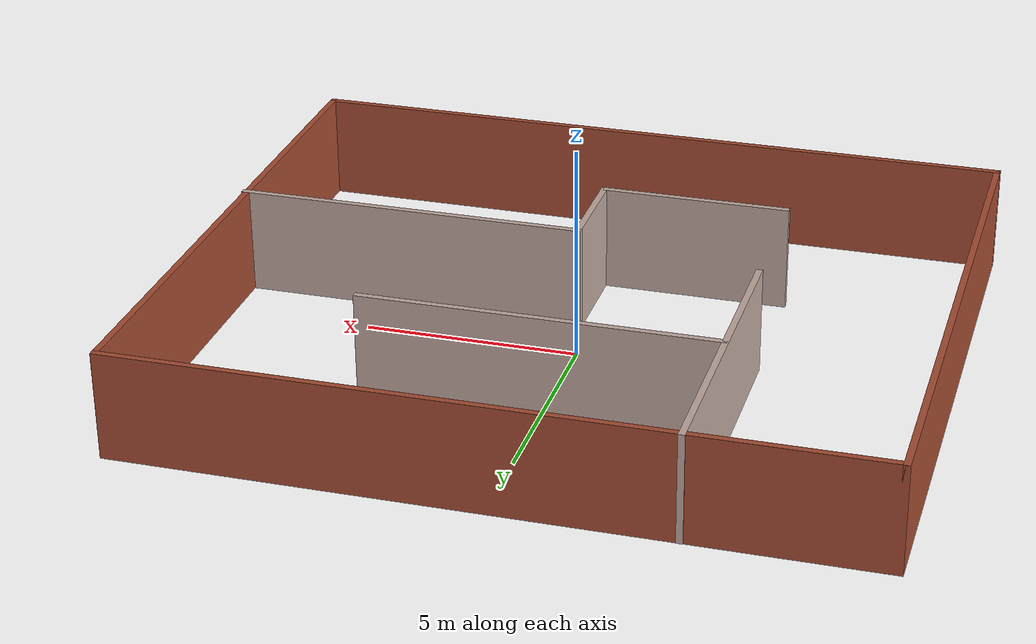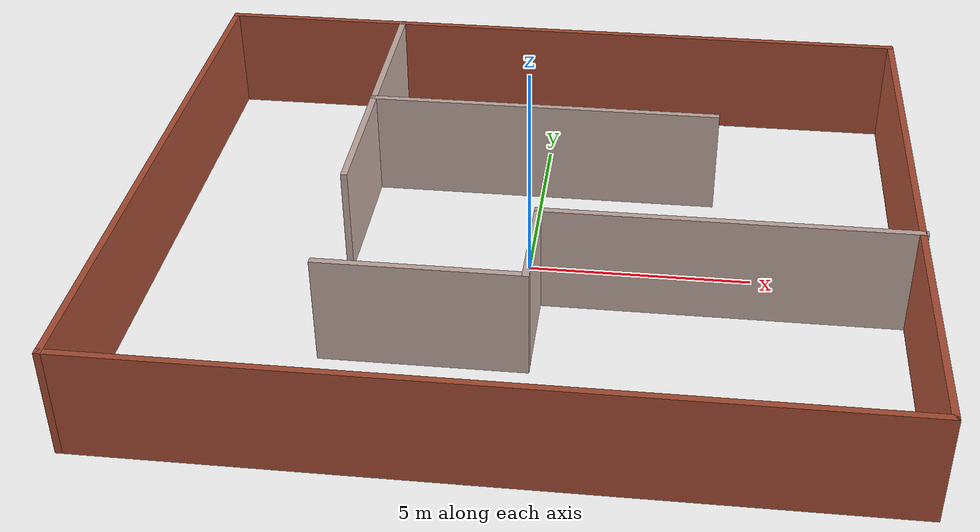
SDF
<sdf version="1.4">
 <world name="default">
  <scene>
   <ambient>0.68 0.68 0.68 1.0</ambient>
   <shadows>false</shadows>
   <sky><clouds><speed>12</speed></clouds></sky>
  </scene>
  <physics type="ode">
   <max_step_size>0.001</max_step_size>
   <real_time_factor>1</real_time_factor>
   <real_time_update_rate>1000</real_time_update_rate>
   <gravity>0 0 -9.8</gravity>
  </physics>
  <include><uri>model://sun</uri></include>
  <include><uri>model://test</uri></include>
 </world>
</sdf>

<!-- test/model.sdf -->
<sdf version='1.7'>
  <model name='test'>
      <pose>-0.030345 -0.02 0 0 -0 0</pose>
      <link name='Wall_25'>
        <collision name='Wall_25_Collision'>
          <geometry>
            <box>
              <size>17 0.15 2.5</size>
            </box>
          </geometry>
          <pose>0 0 1.25 0 -0 0</pose>
          <max_contacts>10</max_contacts>
          <surface>
            <contact>
              <ode/>
            </contact>
            <bounce/>
            <friction>
              <torsional>
                <ode/>
              </torsional>
              <ode/>
            </friction>
          </surface>
        </collision>
        <visual name='Wall_25_Visual'>
          <pose>0 0 1.25 0 -0 0</pose>
          <geometry>
            <box>
              <size>17 0.15 2.5</size>
            </box>
          </geometry>
          <material>
            <script>
              <uri>file://media/materials/scripts/gazebo.material</uri>
              <name>Gazebo/Bricks</name>
            </script>
            <ambient>1 1 1 1</ambient>
          </material>
          <meta>
            <layer>0</layer>
          </meta>
        </visual>
        <pose>-0.023196 7.04434 0 0 -0 0</pose>
        <self_collide>0</self_collide>
        <enable_wind>0</enable_wind>
        <kinematic>0</kinematic>
      </link>
      <link name='Wall_26'>
        <collision name='Wall_26_Collision'>
          <geometry>
            <box>
              <size>14.25 0.15 2.5</size>
            </box>
          </geometry>
          <pose>0 0 1.25 0 -0 0</pose>
          <max_contacts>10</max_contacts>
          <surface>
            <contact>
              <ode/>
            </contact>
            <bounce/>
            <friction>
              <torsional>
                <ode/>
              </torsional>
              <ode/>
            </friction>
          </surface>
        </collision>
        <visual name='Wall_26_Visual'>
          <pose>0 0 1.25 0 -0 0</pose>
          <geometry>
            <box>
              <size>14.25 0.15 2.5</size>
            </box>
          </geometry>
          <material>
            <script>
              <uri>file://media/materials/scripts/gazebo.material</uri>
              <name>Gazebo/Bricks</name>
            </script>
            <ambient>1 1 1 1</ambient>
          </material>
          <meta>
            <layer>0</layer>
          </meta>
        </visual>
        <pose>8.4018 -0.005663 0 0 -0 -1.5708</pose>
        <self_collide>0</self_collide>
        <enable_wind>0</enable_wind>
        <kinematic>0</kinematic>
      </link>
      <link name='Wall_27'>
        <collision name='Wall_27_Collision'>
          <geometry>
            <box>
              <size>17 0.15 2.5</size>
            </box>
          </geometry>
          <pose>0 0 1.25 0 -0 0</pose>
          <max_contacts>10</max_contacts>
          <surface>
            <contact>
              <ode/>
            </contact>
            <bounce/>
            <friction>
              <torsional>
                <ode/>
              </torsional>
              <ode/>
            </friction>
          </surface>
        </collision>
        <visual name='Wall_27_Visual'>
          <pose>0 0 1.25 0 -0 0</pose>
          <geometry>
            <box>
              <size>17 0.15 2.5</size>
            </box>
          </geometry>
          <material>
            <script>
              <uri>file://media/materials/scripts/gazebo.material</uri>
              <name>Gazebo/Bricks</name>
            </script>
            <ambient>1 1 1 1</ambient>
          </material>
          <meta>
            <layer>0</layer>
          </meta>
        </visual>
        <pose>-0.023196 -7.05566 0 0 -0 3.14159</pose>
        <self_collide>0</self_collide>
        <enable_wind>0</enable_wind>
        <kinematic>0</kinematic>
      </link>
      <link name='Wall_28'>
        <collision name='Wall_28_Collision'>
          <geometry>
            <box>
              <size>14.25 0.15 2.5</size>
            </box>
          </geometry>
          <pose>0 0 1.25 0 -0 0</pose>
          <max_contacts>10</max_contacts>
          <surface>
            <contact>
              <ode/>
            </contact>
            <bounce/>
            <friction>
              <torsional>
                <ode/>
              </torsional>
              <ode/>
            </friction>
          </surface>
        </collision>
        <visual name='Wall_28_Visual'>
          <pose>0 0 1.25 0 -0 0</pose>
          <geometry>
            <box>
              <size>14.25 0.15 2.5</size>
            </box>
          </geometry>
          <material>
            <script>
              <uri>file://media/materials/scripts/gazebo.material</uri>
              <name>Gazebo/Bricks</name>
            </script>
            <ambient>1 1 1 1</ambient>
          </material>
          <meta>
            <layer>0</layer>
          </meta>
        </visual>
        <pose>-8.4482 -0.005663 0 0 -0 1.5708</pose>
        <self_collide>0</self_collide>
        <enable_wind>0</enable_wind>
        <kinematic>0</kinematic>
      </link>
      <link name='Wall_30'>
        <collision name='Wall_30_Collision'>
          <geometry>
            <box>
              <size>7.5 0.15 2.5</size>
            </box>
          </geometry>
          <pose>0 0 1.25 0 -0 0</pose>
          <max_contacts>10</max_contacts>
          <surface>
            <contact>
              <ode/>
            </contact>
            <bounce/>
            <friction>
              <torsional>
                <ode/>
              </torsional>
              <ode/>
            </friction>
          </surface>
        </collision>
        <visual name='Wall_30_Visual'>
          <pose>0 0 1.25 0 -0 0</pose>
          <geometry>
            <box>
              <size>7.5 0.15 2.5</size>
            </box>
          </geometry>
          <material>
            <script>
              <uri>file://media/materials/scripts/gazebo.material</uri>
              <name>Gazebo/Grey</name>
            </script>
            <ambient>0.760784 0.662745 0.627451 1</ambient>
          </material>
          <meta>
            <layer>0</layer>
          </meta>
        </visual>
        <pose>-4.04746 3.38066 0 0 -0 -1.5708</pose>
        <self_collide>0</self_collide>
        <enable_wind>0</enable_wind>
        <kinematic>0</kinematic>
      </link>
      <link name='Wall_34'>
        <collision name='Wall_34_Collision'>
          <geometry>
            <box>
              <size>8.25 0.15 2.5</size>
            </box>
          </geometry>
          <pose>0 0 1.25 0 -0 0</pose>
          <max_contacts>10</max_contacts>
          <surface>
            <contact>
              <ode/>
            </contact>
            <bounce/>
            <friction>
              <torsional>
                <ode/>
              </torsional>
              <ode/>
            </friction>
          </surface>
        </collision>
        <visual name='Wall_34_Visual'>
          <pose>0 0 1.25 0 -0 0</pose>
          <geometry>
            <box>
              <size>8.25 0.15 2.5</size>
            </box>
          </geometry>
          <material>
            <script>
              <uri>file://media/materials/scripts/gazebo.material</uri>
              <name>Gazebo/Grey</name>
            </script>
            <ambient>0.760784 0.662745 0.627451 1</ambient>
          </material>
          <meta>
            <layer>0</layer>
          </meta>
        </visual>
        <pose>0.028631 3.11653 0 0 -0 0</pose>
        <self_collide>0</self_collide>
        <enable_wind>0</enable_wind>
        <kinematic>0</kinematic>
      </link>
      <link name='Wall_36'>
        <collision name='Wall_36_Collision'>
          <geometry>
            <box>
              <size>8.25 0.15 2.5</size>
            </box>
          </geometry>
          <pose>0 0 1.25 0 -0 0</pose>
          <max_contacts>10</max_contacts>
          <surface>
            <contact>
              <ode/>
            </contact>
            <bounce/>
            <friction>
              <torsional>
                <ode/>
              </torsional>
              <ode/>
            </friction>
          </surface>
        </collision>
        <visual name='Wall_36_Visual'>
          <pose>0 0 1.25 0 -0 0</pose>
          <geometry>
            <box>
              <size>8.25 0.15 2.5</size>
            </box>
          </geometry>
          <material>
            <script>
              <uri>file://media/materials/scripts/gazebo.material</uri>
              <name>Gazebo/Grey</name>
            </script>
            <ambient>0.760784 0.662745 0.627451 1</ambient>
          </material>
          <meta>
            <layer>0</layer>
          </meta>
        </visual>
        <pose>4.3982 -1.26608 0 0 -0 3.14159</pose>
        <self_collide>0</self_collide>
        <enable_wind>0</enable_wind>
        <kinematic>0</kinematic>
      </link>
      <link name='Wall_38'>
        <collision name='Wall_38_Collision'>
          <geometry>
            <box>
              <size>2.5 0.15 2.5</size>
            </box>
          </geometry>
          <pose>0 0 1.25 0 -0 0</pose>
          <max_contacts>10</max_contacts>
          <surface>
            <contact>
              <ode/>
            </contact>
            <bounce/>
            <friction>
              <torsional>
                <ode/>
              </torsional>
              <ode/>
            </friction>
          </surface>
        </collision>
        <visual name='Wall_38_Visual'>
          <pose>0 0 1.25 0 -0 0</pose>
          <geometry>
            <box>
              <size>2.5 0.15 2.5</size>
            </box>
          </geometry>
          <material>
            <script>
              <uri>file://media/materials/scripts/gazebo.material</uri>
              <name>Gazebo/Grey</name>
            </script>
            <ambient>0.760784 0.662745 0.627451 1</ambient>
          </material>
          <meta>
            <layer>0</layer>
          </meta>
        </visual>
        <pose>0.348196 -2.44108 0 0 -0 -1.5708</pose>
        <self_collide>0</self_collide>
        <enable_wind>0</enable_wind>
        <kinematic>0</kinematic>
      </link>
      <link name='Wall_40'>
        <collision name='Wall_40_Collision'>
          <geometry>
            <box>
              <size>4.5 0.15 2.5</size>
            </box>
          </geometry>
          <pose>0 0 1.25 0 -0 0</pose>
          <max_contacts>10</max_contacts>
          <surface>
            <contact>
              <ode/>
            </contact>
            <bounce/>
            <friction>
              <torsional>
                <ode/>
              </torsional>
              <ode/>
            </friction>
          </surface>
        </collision>
        <visual name='Wall_40_Visual'>
          <pose>0 0 1.25 0 -0 0</pose>
          <geometry>
            <box>
              <size>4.5 0.15 2.5</size>
            </box>
          </geometry>
          <material>
            <script>
              <uri>file://media/materials/scripts/gazebo.material</uri>
              <name>Gazebo/Grey</name>
            </script>
            <ambient>0.760784 0.662745 0.627451 1</ambient>
          </material>
          <meta>
            <layer>0</layer>
          </meta>
        </visual>
        <pose>-1.8268 -3.61608 0 0 -0 3.14159</pose>
        <self_collide>0</self_collide>
        <enable_wind>0</enable_wind>
        <kinematic>0</kinematic>
      </link>
      <static>1</static>
    </model>
</sdf>
